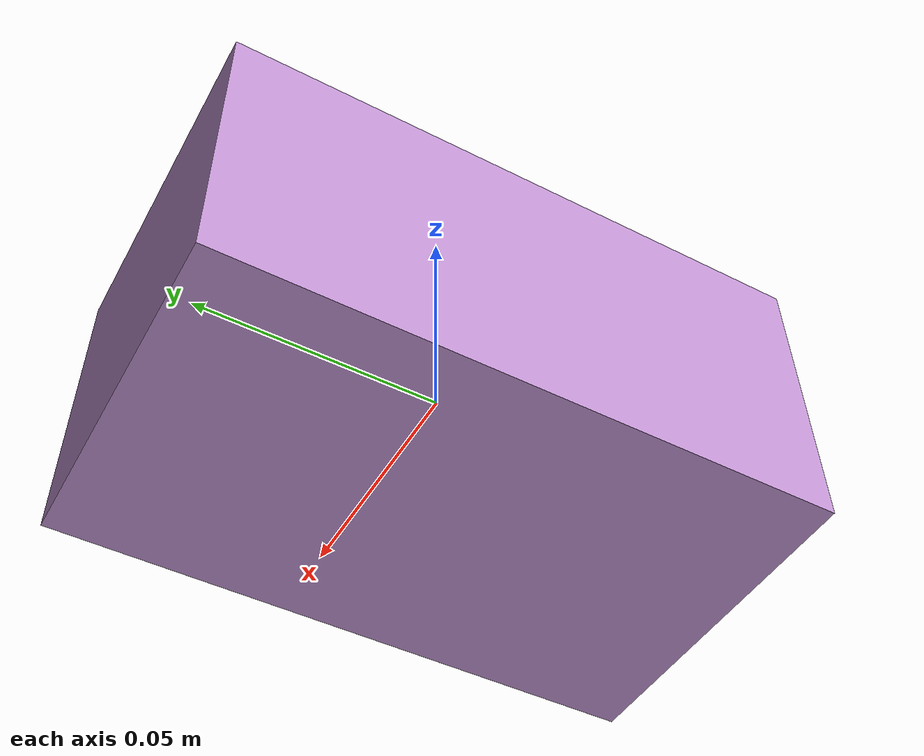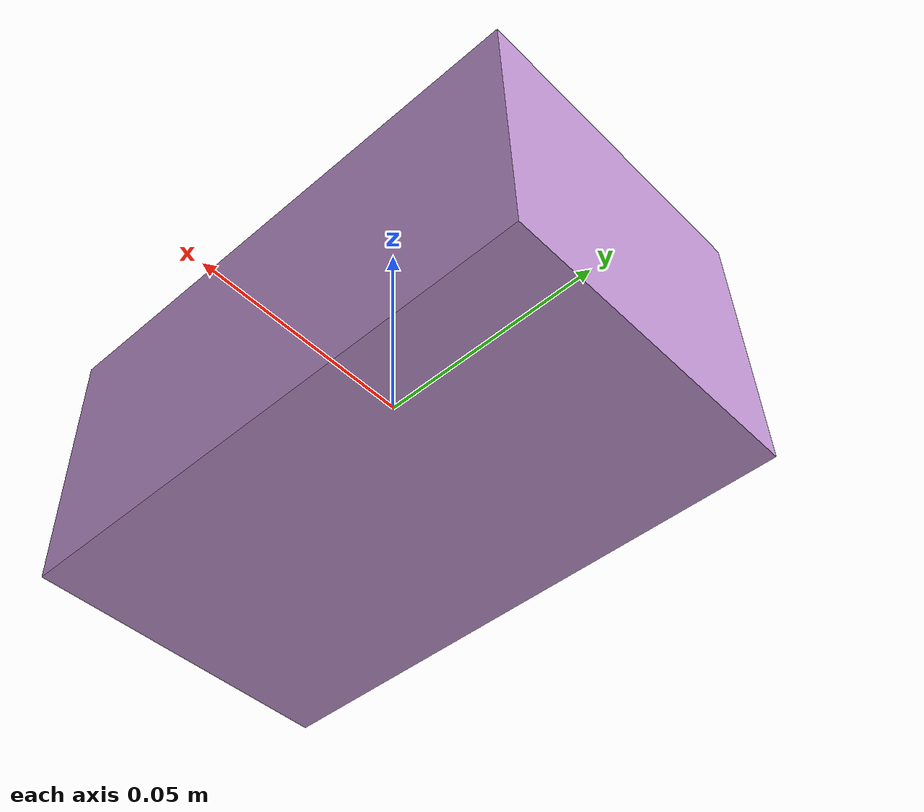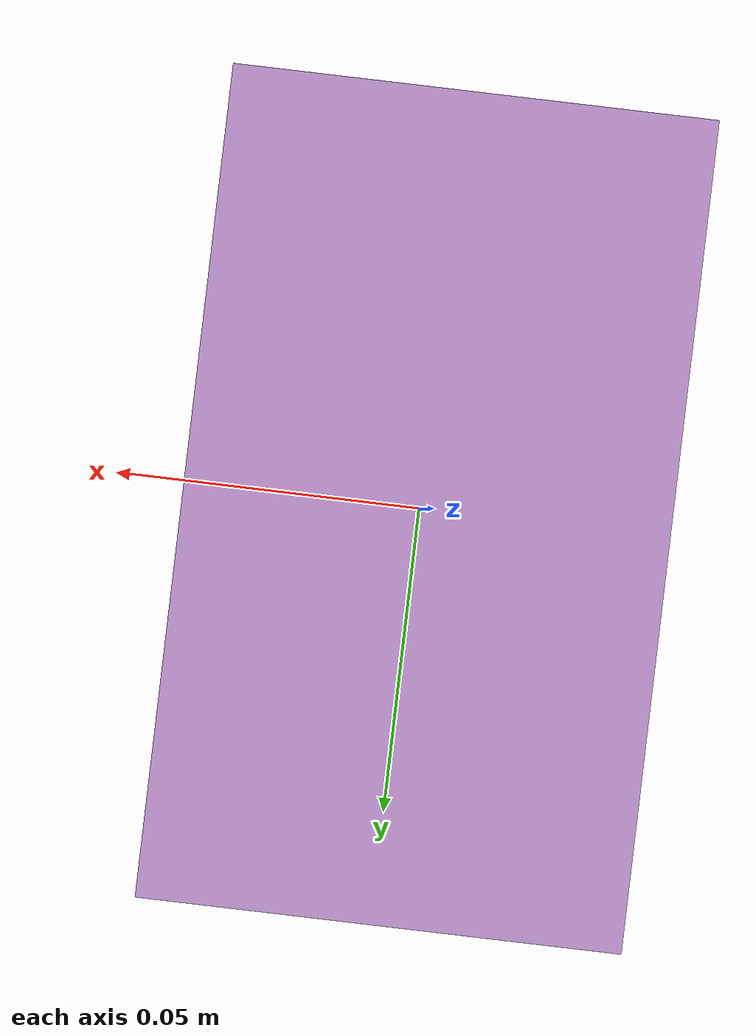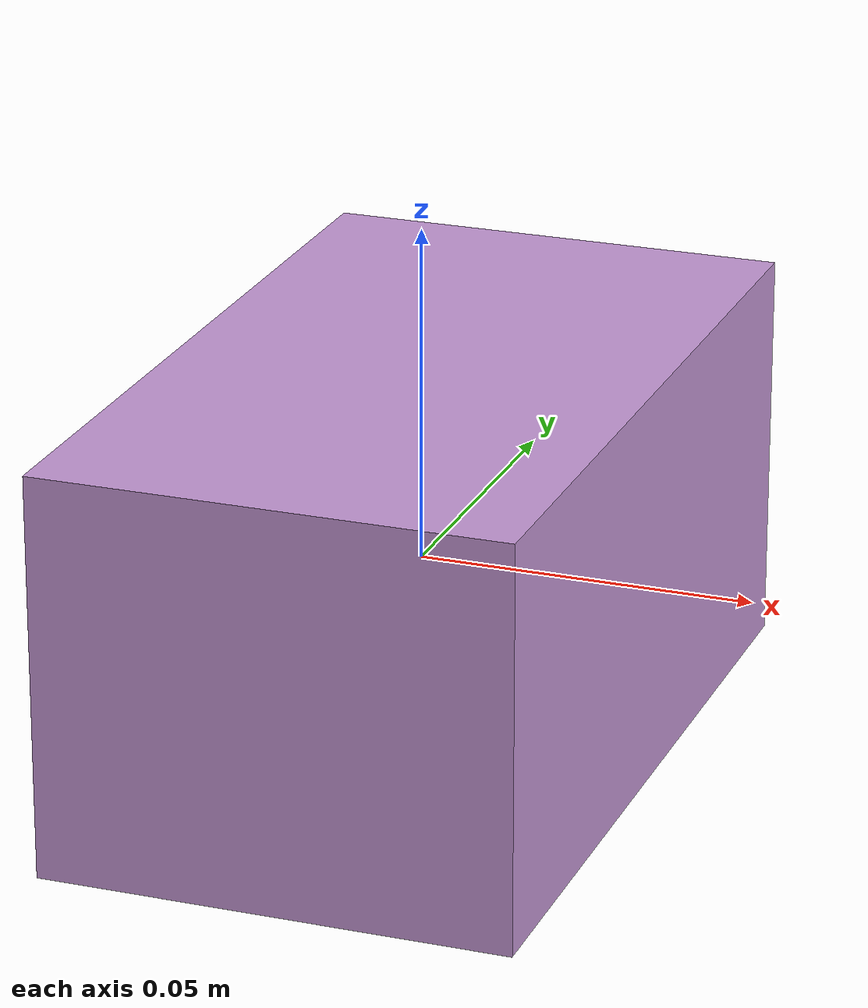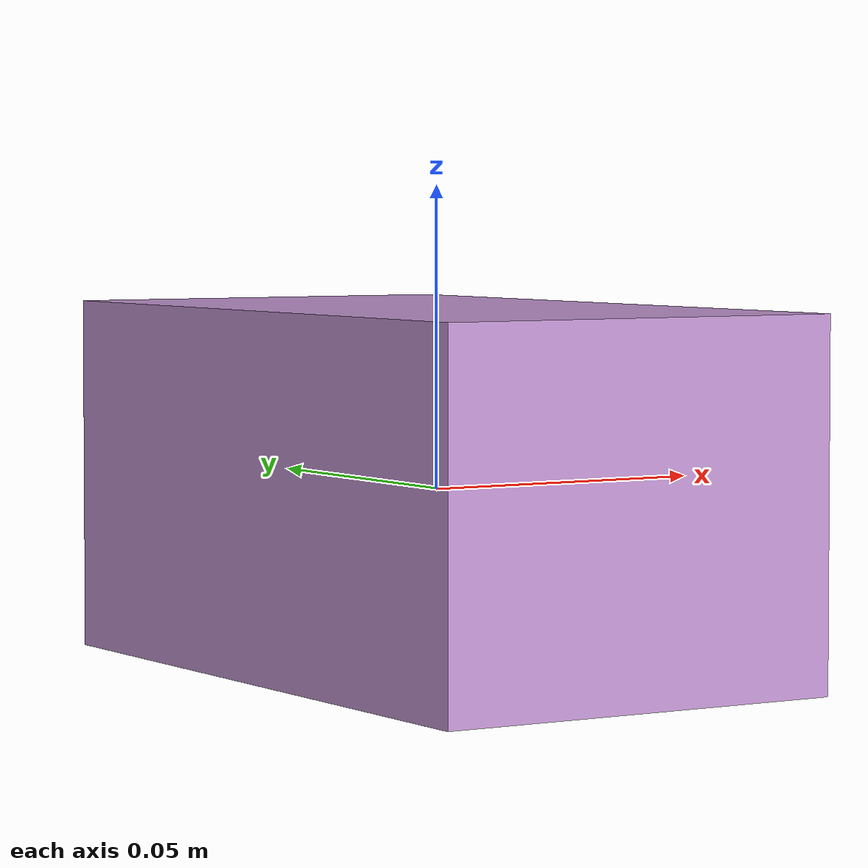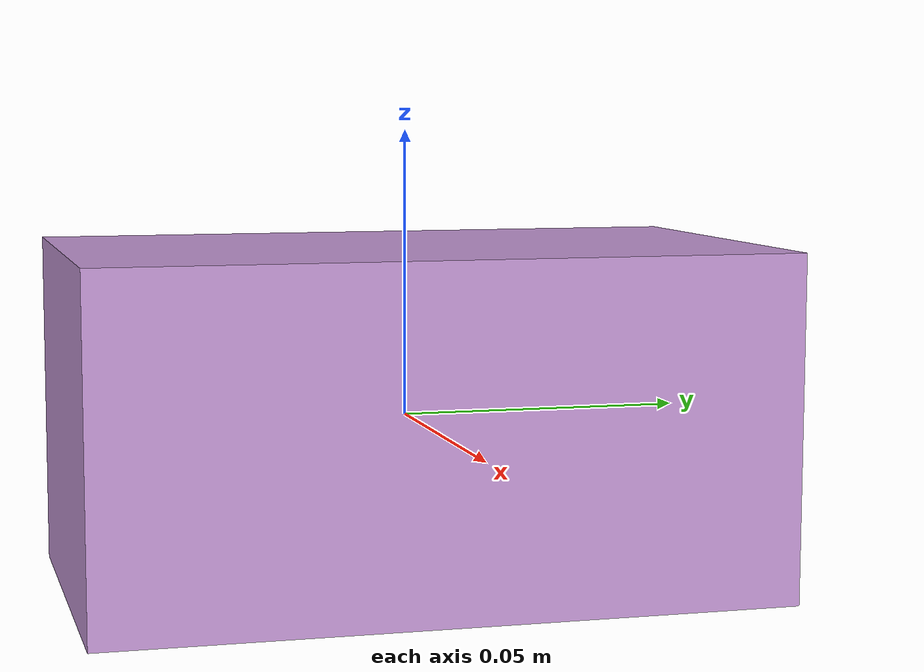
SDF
<?xml version="1.0"?>
<sdf version="1.7">
  <model name="block1">
    <pose> 0 0 0 0 0 0 </pose>
    <link name="block1_link">
      <inertial>
        <mass>1</mass>
        <inertia>
          <ixx>0.13500258058747125</ixx>
          <ixy>0.0</ixy>
          <ixz>0.0</ixz>
          <iyy>0.13956870463579432</iyy>
          <iyz>0.0</iyz>
          <izz>0.13379230185272217</izz>
        </inertia>
      </inertial>
      <collision name="collision">
        <geometry>
          <box>
            <size> 0.06999999999999999 0.12000000000000001 0.06 </size>
          </box>
        </geometry>
      </collision>
      <visual name="visual">
        <geometry>
          <box>
            <size> 0.06999999999999999 0.12000000000000001 0.06 </size>
          </box>
        </geometry>
        <material>
          <diffuse>0.7725490196078432 0.596078431372549 0.8392156862745098 1.0</diffuse>
        </material>
      </visual>
    </link>
  </model>
</sdf>
